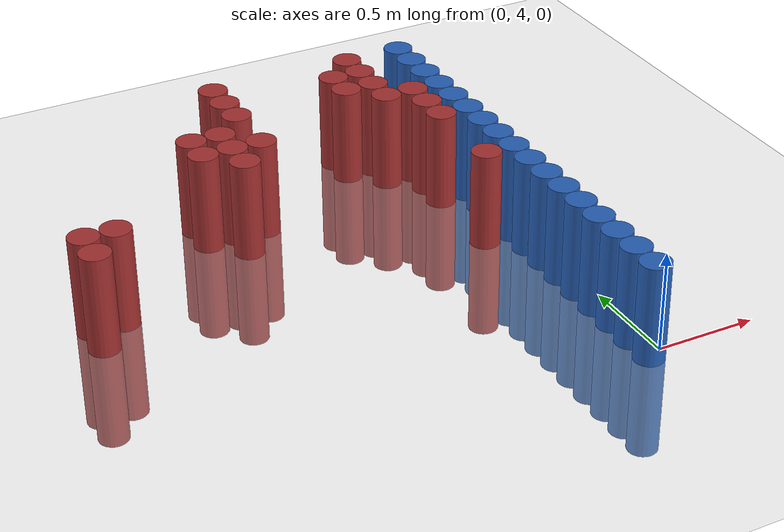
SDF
<sdf version="1.6">
 <world name="default">
  <model name="ground_plane">
   <static>1</static>
   <link name="link">
    <collision name="collision">
     <geometry><plane><normal>0 0 1</normal><size>100 100</size></plane></geometry>
     <surface><friction><ode><mu>100</mu><mu2>50</mu2></ode></friction></surface>
    </collision>
    <visual name="visual">
     <cast_shadows>0</cast_shadows>
     <geometry><plane><normal>0 0 1</normal><size>100 100</size></plane></geometry>
     <material>
      <script><uri>file://media/materials/scripts/gazebo.material</uri><name>Gazebo/Grey</name></script>
     </material>
    </visual>
   </link>
  </model>
  <model name="unit_cylinder_80">
   <static>1</static>
   <pose>-0.075000 3.975000 0.000000 0.000000 0.000000 0.000000</pose>
   <link name="link">
    <inertial>
     <mass>1</mass>
     <inertia><ixx>0.145833</ixx><ixy>0</ixy><ixz>0</ixz><iyy>0.145833</iyy><iyz>0</iyz><izz>0.125</izz></inertia>
    </inertial>
    <collision name="collision">
     <geometry><cylinder><radius>0.075000</radius><length>1</length></cylinder></geometry>
    </collision>
    <visual name="visual">
     <geometry><cylinder><radius>0.075000</radius><length>1</length></cylinder></geometry>
     <material>
      <ambient>0.152000 0.379000 0.720000 1</ambient>
      <diffuse>0.152000 0.379000 0.720000 1</diffuse>
     </material>
     <material>
      <script><name>Gazebo/Grey</name><uri>file://media/materials/scripts/gazebo.material</uri></script>
     </material>
    </visual>
    <sensor name="sensor_contact" type="contact"><contact><collision>collision</collision></contact></sensor>
   </link>
   <plugin filename="gz-sim-touchplugin-system" name="gz::sim::systems::TouchPlugin">
    <target>robot</target>
    <namespace>robot</namespace>
    <time>0.001</time>
    <enabled>true</enabled>
   </plugin>
  </model>
  <model name="unit_cylinder_82">
   <static>1</static>
   <pose>-0.075000 4.125000 0.000000 0.000000 0.000000 0.000000</pose>
   <link name="link">
    <inertial>
     <mass>1</mass>
     <inertia><ixx>0.145833</ixx><ixy>0</ixy><ixz>0</ixz><iyy>0.145833</iyy><iyz>0</iyz><izz>0.125</izz></inertia>
    </inertial>
    <collision name="collision">
     <geometry><cylinder><radius>0.075000</radius><length>1</length></cylinder></geometry>
    </collision>
    <visual name="visual">
     <geometry><cylinder><radius>0.075000</radius><length>1</length></cylinder></geometry>
     <material>
      <ambient>0.152000 0.379000 0.720000 1</ambient>
      <diffuse>0.152000 0.379000 0.720000 1</diffuse>
     </material>
     <material>
      <script><name>Gazebo/Grey</name><uri>file://media/materials/scripts/gazebo.material</uri></script>
     </material>
    </visual>
    <sensor name="sensor_contact" type="contact"><contact><collision>collision</collision></contact></sensor>
   </link>
   <plugin filename="gz-sim-touchplugin-system" name="gz::sim::systems::TouchPlugin">
    <target>robot</target>
    <namespace>robot</namespace>
    <time>0.001</time>
    <enabled>true</enabled>
   </plugin>
  </model>
  <model name="unit_cylinder_84">
   <static>1</static>
   <pose>-0.075000 4.275000 0.000000 0.000000 0.000000 0.000000</pose>
   <link name="link">
    <inertial>
     <mass>1</mass>
     <inertia><ixx>0.145833</ixx><ixy>0</ixy><ixz>0</ixz><iyy>0.145833</iyy><iyz>0</iyz><izz>0.125</izz></inertia>
    </inertial>
    <collision name="collision">
     <geometry><cylinder><radius>0.075000</radius><length>1</length></cylinder></geometry>
    </collision>
    <visual name="visual">
     <geometry><cylinder><radius>0.075000</radius><length>1</length></cylinder></geometry>
     <material>
      <ambient>0.152000 0.379000 0.720000 1</ambient>
      <diffuse>0.152000 0.379000 0.720000 1</diffuse>
     </material>
     <material>
      <script><name>Gazebo/Grey</name><uri>file://media/materials/scripts/gazebo.material</uri></script>
     </material>
    </visual>
    <sensor name="sensor_contact" type="contact"><contact><collision>collision</collision></contact></sensor>
   </link>
   <plugin filename="gz-sim-touchplugin-system" name="gz::sim::systems::TouchPlugin">
    <target>robot</target>
    <namespace>robot</namespace>
    <time>0.001</time>
    <enabled>true</enabled>
   </plugin>
  </model>
  <model name="unit_cylinder_86">
   <static>1</static>
   <pose>-0.075000 4.425000 0.000000 0.000000 0.000000 0.000000</pose>
   <link name="link">
    <inertial>
     <mass>1</mass>
     <inertia><ixx>0.145833</ixx><ixy>0</ixy><ixz>0</ixz><iyy>0.145833</iyy><iyz>0</iyz><izz>0.125</izz></inertia>
    </inertial>
    <collision name="collision">
     <geometry><cylinder><radius>0.075000</radius><length>1</length></cylinder></geometry>
    </collision>
    <visual name="visual">
     <geometry><cylinder><radius>0.075000</radius><length>1</length></cylinder></geometry>
     <material>
      <ambient>0.152000 0.379000 0.720000 1</ambient>
      <diffuse>0.152000 0.379000 0.720000 1</diffuse>
     </material>
     <material>
      <script><name>Gazebo/Grey</name><uri>file://media/materials/scripts/gazebo.material</uri></script>
     </material>
    </visual>
    <sensor name="sensor_contact" type="contact"><contact><collision>collision</collision></contact></sensor>
   </link>
   <plugin filename="gz-sim-touchplugin-system" name="gz::sim::systems::TouchPlugin">
    <target>robot</target>
    <namespace>robot</namespace>
    <time>0.001</time>
    <enabled>true</enabled>
   </plugin>
  </model>
  <model name="unit_cylinder_88">
   <static>1</static>
   <pose>-0.075000 4.575000 0.000000 0.000000 0.000000 0.000000</pose>
   <link name="link">
    <inertial>
     <mass>1</mass>
     <inertia><ixx>0.145833</ixx><ixy>0</ixy><ixz>0</ixz><iyy>0.145833</iyy><iyz>0</iyz><izz>0.125</izz></inertia>
    </inertial>
    <collision name="collision">
     <geometry><cylinder><radius>0.075000</radius><length>1</length></cylinder></geometry>
    </collision>
    <visual name="visual">
     <geometry><cylinder><radius>0.075000</radius><length>1</length></cylinder></geometry>
     <material>
      <ambient>0.152000 0.379000 0.720000 1</ambient>
      <diffuse>0.152000 0.379000 0.720000 1</diffuse>
     </material>
     <material>
      <script><name>Gazebo/Grey</name><uri>file://media/materials/scripts/gazebo.material</uri></script>
     </material>
    </visual>
    <sensor name="sensor_contact" type="contact"><contact><collision>collision</collision></contact></sensor>
   </link>
   <plugin filename="gz-sim-touchplugin-system" name="gz::sim::systems::TouchPlugin">
    <target>robot</target>
    <namespace>robot</namespace>
    <time>0.001</time>
    <enabled>true</enabled>
   </plugin>
  </model>
  <model name="unit_cylinder_90">
   <static>1</static>
   <pose>-0.075000 4.725000 0.000000 0.000000 0.000000 0.000000</pose>
   <link name="link">
    <inertial>
     <mass>1</mass>
     <inertia><ixx>0.145833</ixx><ixy>0</ixy><ixz>0</ixz><iyy>0.145833</iyy><iyz>0</iyz><izz>0.125</izz></inertia>
    </inertial>
    <collision name="collision">
     <geometry><cylinder><radius>0.075000</radius><length>1</length></cylinder></geometry>
    </collision>
    <visual name="visual">
     <geometry><cylinder><radius>0.075000</radius><length>1</length></cylinder></geometry>
     <material>
      <ambient>0.152000 0.379000 0.720000 1</ambient>
      <diffuse>0.152000 0.379000 0.720000 1</diffuse>
     </material>
     <material>
      <script><name>Gazebo/Grey</name><uri>file://media/materials/scripts/gazebo.material</uri></script>
     </material>
    </visual>
    <sensor name="sensor_contact" type="contact"><contact><collision>collision</collision></contact></sensor>
   </link>
   <plugin filename="gz-sim-touchplugin-system" name="gz::sim::systems::TouchPlugin">
    <target>robot</target>
    <namespace>robot</namespace>
    <time>0.001</time>
    <enabled>true</enabled>
   </plugin>
  </model>
  <model name="unit_cylinder_92">
   <static>1</static>
   <pose>-0.075000 4.875000 0.000000 0.000000 0.000000 0.000000</pose>
   <link name="link">
    <inertial>
     <mass>1</mass>
     <inertia><ixx>0.145833</ixx><ixy>0</ixy><ixz>0</ixz><iyy>0.145833</iyy><iyz>0</iyz><izz>0.125</izz></inertia>
    </inertial>
    <collision name="collision">
     <geometry><cylinder><radius>0.075000</radius><length>1</length></cylinder></geometry>
    </collision>
    <visual name="visual">
     <geometry><cylinder><radius>0.075000</radius><length>1</length></cylinder></geometry>
     <material>
      <ambient>0.152000 0.379000 0.720000 1</ambient>
      <diffuse>0.152000 0.379000 0.720000 1</diffuse>
     </material>
     <material>
      <script><name>Gazebo/Grey</name><uri>file://media/materials/scripts/gazebo.material</uri></script>
     </material>
    </visual>
    <sensor name="sensor_contact" type="contact"><contact><collision>collision</collision></contact></sensor>
   </link>
   <plugin filename="gz-sim-touchplugin-system" name="gz::sim::systems::TouchPlugin">
    <target>robot</target>
    <namespace>robot</namespace>
    <time>0.001</time>
    <enabled>true</enabled>
   </plugin>
  </model>
  <model name="unit_cylinder_94">
   <static>1</static>
   <pose>-0.075000 5.025000 0.000000 0.000000 0.000000 0.000000</pose>
   <link name="link">
    <inertial>
     <mass>1</mass>
     <inertia><ixx>0.145833</ixx><ixy>0</ixy><ixz>0</ixz><iyy>0.145833</iyy><iyz>0</iyz><izz>0.125</izz></inertia>
    </inertial>
    <collision name="collision">
     <geometry><cylinder><radius>0.075000</radius><length>1</length></cylinder></geometry>
    </collision>
    <visual name="visual">
     <geometry><cylinder><radius>0.075000</radius><length>1</length></cylinder></geometry>
     <material>
      <ambient>0.152000 0.379000 0.720000 1</ambient>
      <diffuse>0.152000 0.379000 0.720000 1</diffuse>
     </material>
     <material>
      <script><name>Gazebo/Grey</name><uri>file://media/materials/scripts/gazebo.material</uri></script>
     </material>
    </visual>
    <sensor name="sensor_contact" type="contact"><contact><collision>collision</collision></contact></sensor>
   </link>
   <plugin filename="gz-sim-touchplugin-system" name="gz::sim::systems::TouchPlugin">
    <target>robot</target>
    <namespace>robot</namespace>
    <time>0.001</time>
    <enabled>true</enabled>
   </plugin>
  </model>
  <model name="unit_cylinder_206">
   <static>1</static>
   <pose>-2.175000 5.175000 0.000000 0.000000 0.000000 0.000000</pose>
   <link name="link">
    <inertial>
     <mass>1</mass>
     <inertia><ixx>0.145833</ixx><ixy>0</ixy><ixz>0</ixz><iyy>0.145833</iyy><iyz>0</iyz><izz>0.125</izz></inertia>
    </inertial>
    <collision name="collision">
     <geometry><cylinder><radius>0.075000</radius><length>1</length></cylinder></geometry>
    </collision>
    <visual name="visual">
     <geometry><cylinder><radius>0.075000</radius><length>1</length></cylinder></geometry>
     <material>
      <ambient>0.648000 0.192000 0.192000 1</ambient>
      <diffuse>0.648000 0.192000 0.192000 1</diffuse>
     </material>
     <material>
      <script><name>Gazebo/Grey</name><uri>file://media/materials/scripts/gazebo.material</uri></script>
     </material>
    </visual>
    <sensor name="sensor_contact" type="contact"><contact><collision>collision</collision></contact></sensor>
   </link>
   <plugin filename="gz-sim-touchplugin-system" name="gz::sim::systems::TouchPlugin">
    <target>robot</target>
    <namespace>robot</namespace>
    <time>0.001</time>
    <enabled>true</enabled>
   </plugin>
  </model>
  <model name="unit_cylinder_207">
   <static>1</static>
   <pose>-2.175000 5.325000 0.000000 0.000000 0.000000 0.000000</pose>
   <link name="link">
    <inertial>
     <mass>1</mass>
     <inertia><ixx>0.145833</ixx><ixy>0</ixy><ixz>0</ixz><iyy>0.145833</iyy><iyz>0</iyz><izz>0.125</izz></inertia>
    </inertial>
    <collision name="collision">
     <geometry><cylinder><radius>0.075000</radius><length>1</length></cylinder></geometry>
    </collision>
    <visual name="visual">
     <geometry><cylinder><radius>0.075000</radius><length>1</length></cylinder></geometry>
     <material>
      <ambient>0.648000 0.192000 0.192000 1</ambient>
      <diffuse>0.648000 0.192000 0.192000 1</diffuse>
     </material>
     <material>
      <script><name>Gazebo/Grey</name><uri>file://media/materials/scripts/gazebo.material</uri></script>
     </material>
    </visual>
    <sensor name="sensor_contact" type="contact"><contact><collision>collision</collision></contact></sensor>
   </link>
   <plugin filename="gz-sim-touchplugin-system" name="gz::sim::systems::TouchPlugin">
    <target>robot</target>
    <namespace>robot</namespace>
    <time>0.001</time>
    <enabled>true</enabled>
   </plugin>
  </model>
  <model name="unit_cylinder_219">
   <static>1</static>
   <pose>-2.025000 5.325000 0.000000 0.000000 0.000000 0.000000</pose>
   <link name="link">
    <inertial>
     <mass>1</mass>
     <inertia><ixx>0.145833</ixx><ixy>0</ixy><ixz>0</ixz><iyy>0.145833</iyy><iyz>0</iyz><izz>0.125</izz></inertia>
    </inertial>
    <collision name="collision">
     <geometry><cylinder><radius>0.075000</radius><length>1</length></cylinder></geometry>
    </collision>
    <visual name="visual">
     <geometry><cylinder><radius>0.075000</radius><length>1</length></cylinder></geometry>
     <material>
      <ambient>0.648000 0.192000 0.192000 1</ambient>
      <diffuse>0.648000 0.192000 0.192000 1</diffuse>
     </material>
     <material>
      <script><name>Gazebo/Grey</name><uri>file://media/materials/scripts/gazebo.material</uri></script>
     </material>
    </visual>
    <sensor name="sensor_contact" type="contact"><contact><collision>collision</collision></contact></sensor>
   </link>
   <plugin filename="gz-sim-touchplugin-system" name="gz::sim::systems::TouchPlugin">
    <target>robot</target>
    <namespace>robot</namespace>
    <time>0.001</time>
    <enabled>true</enabled>
   </plugin>
  </model>
  <model name="unit_cylinder_225">
   <static>1</static>
   <pose>-1.425000 5.775000 0.000000 0.000000 0.000000 0.000000</pose>
   <link name="link">
    <inertial>
     <mass>1</mass>
     <inertia><ixx>0.145833</ixx><ixy>0</ixy><ixz>0</ixz><iyy>0.145833</iyy><iyz>0</iyz><izz>0.125</izz></inertia>
    </inertial>
    <collision name="collision">
     <geometry><cylinder><radius>0.075000</radius><length>1</length></cylinder></geometry>
    </collision>
    <visual name="visual">
     <geometry><cylinder><radius>0.075000</radius><length>1</length></cylinder></geometry>
     <material>
      <ambient>0.648000 0.192000 0.192000 1</ambient>
      <diffuse>0.648000 0.192000 0.192000 1</diffuse>
     </material>
     <material>
      <script><name>Gazebo/Grey</name><uri>file://media/materials/scripts/gazebo.material</uri></script>
     </material>
    </visual>
    <sensor name="sensor_contact" type="contact"><contact><collision>collision</collision></contact></sensor>
   </link>
   <plugin filename="gz-sim-touchplugin-system" name="gz::sim::systems::TouchPlugin">
    <target>robot</target>
    <namespace>robot</namespace>
    <time>0.001</time>
    <enabled>true</enabled>
   </plugin>
  </model>
  <model name="unit_cylinder_226">
   <static>1</static>
   <pose>-1.425000 5.925000 0.000000 0.000000 0.000000 0.000000</pose>
   <link name="link">
    <inertial>
     <mass>1</mass>
     <inertia><ixx>0.145833</ixx><ixy>0</ixy><ixz>0</ixz><iyy>0.145833</iyy><iyz>0</iyz><izz>0.125</izz></inertia>
    </inertial>
    <collision name="collision">
     <geometry><cylinder><radius>0.075000</radius><length>1</length></cylinder></geometry>
    </collision>
    <visual name="visual">
     <geometry><cylinder><radius>0.075000</radius><length>1</length></cylinder></geometry>
     <material>
      <ambient>0.648000 0.192000 0.192000 1</ambient>
      <diffuse>0.648000 0.192000 0.192000 1</diffuse>
     </material>
     <material>
      <script><name>Gazebo/Grey</name><uri>file://media/materials/scripts/gazebo.material</uri></script>
     </material>
    </visual>
    <sensor name="sensor_contact" type="contact"><contact><collision>collision</collision></contact></sensor>
   </link>
   <plugin filename="gz-sim-touchplugin-system" name="gz::sim::systems::TouchPlugin">
    <target>robot</target>
    <namespace>robot</namespace>
    <time>0.001</time>
    <enabled>true</enabled>
   </plugin>
  </model>
  <model name="unit_cylinder_229">
   <static>1</static>
   <pose>-1.275000 5.625000 0.000000 0.000000 0.000000 0.000000</pose>
   <link name="link">
    <inertial>
     <mass>1</mass>
     <inertia><ixx>0.145833</ixx><ixy>0</ixy><ixz>0</ixz><iyy>0.145833</iyy><iyz>0</iyz><izz>0.125</izz></inertia>
    </inertial>
    <collision name="collision">
     <geometry><cylinder><radius>0.075000</radius><length>1</length></cylinder></geometry>
    </collision>
    <visual name="visual">
     <geometry><cylinder><radius>0.075000</radius><length>1</length></cylinder></geometry>
     <material>
      <ambient>0.648000 0.192000 0.192000 1</ambient>
      <diffuse>0.648000 0.192000 0.192000 1</diffuse>
     </material>
     <material>
      <script><name>Gazebo/Grey</name><uri>file://media/materials/scripts/gazebo.material</uri></script>
     </material>
    </visual>
    <sensor name="sensor_contact" type="contact"><contact><collision>collision</collision></contact></sensor>
   </link>
   <plugin filename="gz-sim-touchplugin-system" name="gz::sim::systems::TouchPlugin">
    <target>robot</target>
    <namespace>robot</namespace>
    <time>0.001</time>
    <enabled>true</enabled>
   </plugin>
  </model>
  <model name="unit_cylinder_230">
   <static>1</static>
   <pose>-1.275000 5.775000 0.000000 0.000000 0.000000 0.000000</pose>
   <link name="link">
    <inertial>
     <mass>1</mass>
     <inertia><ixx>0.145833</ixx><ixy>0</ixy><ixz>0</ixz><iyy>0.145833</iyy><iyz>0</iyz><izz>0.125</izz></inertia>
    </inertial>
    <collision name="collision">
     <geometry><cylinder><radius>0.075000</radius><length>1</length></cylinder></geometry>
    </collision>
    <visual name="visual">
     <geometry><cylinder><radius>0.075000</radius><length>1</length></cylinder></geometry>
     <material>
      <ambient>0.648000 0.192000 0.192000 1</ambient>
      <diffuse>0.648000 0.192000 0.192000 1</diffuse>
     </material>
     <material>
      <script><name>Gazebo/Grey</name><uri>file://media/materials/scripts/gazebo.material</uri></script>
     </material>
    </visual>
    <sensor name="sensor_contact" type="contact"><contact><collision>collision</collision></contact></sensor>
   </link>
   <plugin filename="gz-sim-touchplugin-system" name="gz::sim::systems::TouchPlugin">
    <target>robot</target>
    <namespace>robot</namespace>
    <time>0.001</time>
    <enabled>true</enabled>
   </plugin>
  </model>
  <model name="unit_cylinder_231">
   <static>1</static>
   <pose>-1.275000 5.925000 0.000000 0.000000 0.000000 0.000000</pose>
   <link name="link">
    <inertial>
     <mass>1</mass>
     <inertia><ixx>0.145833</ixx><ixy>0</ixy><ixz>0</ixz><iyy>0.145833</iyy><iyz>0</iyz><izz>0.125</izz></inertia>
    </inertial>
    <collision name="collision">
     <geometry><cylinder><radius>0.075000</radius><length>1</length></cylinder></geometry>
    </collision>
    <visual name="visual">
     <geometry><cylinder><radius>0.075000</radius><length>1</length></cylinder></geometry>
     <material>
      <ambient>0.648000 0.192000 0.192000 1</ambient>
      <diffuse>0.648000 0.192000 0.192000 1</diffuse>
     </material>
     <material>
      <script><name>Gazebo/Grey</name><uri>file://media/materials/scripts/gazebo.material</uri></script>
     </material>
    </visual>
    <sensor name="sensor_contact" type="contact"><contact><collision>collision</collision></contact></sensor>
   </link>
   <plugin filename="gz-sim-touchplugin-system" name="gz::sim::systems::TouchPlugin">
    <target>robot</target>
    <namespace>robot</namespace>
    <time>0.001</time>
    <enabled>true</enabled>
   </plugin>
  </model>
  <model name="unit_cylinder_238">
   <static>1</static>
   <pose>-1.125000 5.775000 0.000000 0.000000 0.000000 0.000000</pose>
   <link name="link">
    <inertial>
     <mass>1</mass>
     <inertia><ixx>0.145833</ixx><ixy>0</ixy><ixz>0</ixz><iyy>0.145833</iyy><iyz>0</iyz><izz>0.125</izz></inertia>
    </inertial>
    <collision name="collision">
     <geometry><cylinder><radius>0.075000</radius><length>1</length></cylinder></geometry>
    </collision>
    <visual name="visual">
     <geometry><cylinder><radius>0.075000</radius><length>1</length></cylinder></geometry>
     <material>
      <ambient>0.648000 0.192000 0.192000 1</ambient>
      <diffuse>0.648000 0.192000 0.192000 1</diffuse>
     </material>
     <material>
      <script><name>Gazebo/Grey</name><uri>file://media/materials/scripts/gazebo.material</uri></script>
     </material>
    </visual>
    <sensor name="sensor_contact" type="contact"><contact><collision>collision</collision></contact></sensor>
   </link>
   <plugin filename="gz-sim-touchplugin-system" name="gz::sim::systems::TouchPlugin">
    <target>robot</target>
    <namespace>robot</namespace>
    <time>0.001</time>
    <enabled>true</enabled>
   </plugin>
  </model>
  <model name="unit_cylinder_239">
   <static>1</static>
   <pose>-1.125000 6.075000 0.000000 0.000000 0.000000 0.000000</pose>
   <link name="link">
    <inertial>
     <mass>1</mass>
     <inertia><ixx>0.145833</ixx><ixy>0</ixy><ixz>0</ixz><iyy>0.145833</iyy><iyz>0</iyz><izz>0.125</izz></inertia>
    </inertial>
    <collision name="collision">
     <geometry><cylinder><radius>0.075000</radius><length>1</length></cylinder></geometry>
    </collision>
    <visual name="visual">
     <geometry><cylinder><radius>0.075000</radius><length>1</length></cylinder></geometry>
     <material>
      <ambient>0.648000 0.192000 0.192000 1</ambient>
      <diffuse>0.648000 0.192000 0.192000 1</diffuse>
     </material>
     <material>
      <script><name>Gazebo/Grey</name><uri>file://media/materials/scripts/gazebo.material</uri></script>
     </material>
    </visual>
    <sensor name="sensor_contact" type="contact"><contact><collision>collision</collision></contact></sensor>
   </link>
   <plugin filename="gz-sim-touchplugin-system" name="gz::sim::systems::TouchPlugin">
    <target>robot</target>
    <namespace>robot</namespace>
    <time>0.001</time>
    <enabled>true</enabled>
   </plugin>
  </model>
  <model name="unit_cylinder_240">
   <static>1</static>
   <pose>-1.125000 6.225000 0.000000 0.000000 0.000000 0.000000</pose>
   <link name="link">
    <inertial>
     <mass>1</mass>
     <inertia><ixx>0.145833</ixx><ixy>0</ixy><ixz>0</ixz><iyy>0.145833</iyy><iyz>0</iyz><izz>0.125</izz></inertia>
    </inertial>
    <collision name="collision">
     <geometry><cylinder><radius>0.075000</radius><length>1</length></cylinder></geometry>
    </collision>
    <visual name="visual">
     <geometry><cylinder><radius>0.075000</radius><length>1</length></cylinder></geometry>
     <material>
      <ambient>0.648000 0.192000 0.192000 1</ambient>
      <diffuse>0.648000 0.192000 0.192000 1</diffuse>
     </material>
     <material>
      <script><name>Gazebo/Grey</name><uri>file://media/materials/scripts/gazebo.material</uri></script>
     </material>
    </visual>
    <sensor name="sensor_contact" type="contact"><contact><collision>collision</collision></contact></sensor>
   </link>
   <plugin filename="gz-sim-touchplugin-system" name="gz::sim::systems::TouchPlugin">
    <target>robot</target>
    <namespace>robot</namespace>
    <time>0.001</time>
    <enabled>true</enabled>
   </plugin>
  </model>
  <model name="unit_cylinder_241">
   <static>1</static>
   <pose>-1.125000 6.375000 0.000000 0.000000 0.000000 0.000000</pose>
   <link name="link">
    <inertial>
     <mass>1</mass>
     <inertia><ixx>0.145833</ixx><ixy>0</ixy><ixz>0</ixz><iyy>0.145833</iyy><iyz>0</iyz><izz>0.125</izz></inertia>
    </inertial>
    <collision name="collision">
     <geometry><cylinder><radius>0.075000</radius><length>1</length></cylinder></geometry>
    </collision>
    <visual name="visual">
     <geometry><cylinder><radius>0.075000</radius><length>1</length></cylinder></geometry>
     <material>
      <ambient>0.648000 0.192000 0.192000 1</ambient>
      <diffuse>0.648000 0.192000 0.192000 1</diffuse>
     </material>
     <material>
      <script><name>Gazebo/Grey</name><uri>file://media/materials/scripts/gazebo.material</uri></script>
     </material>
    </visual>
    <sensor name="sensor_contact" type="contact"><contact><collision>collision</collision></contact></sensor>
   </link>
   <plugin filename="gz-sim-touchplugin-system" name="gz::sim::systems::TouchPlugin">
    <target>robot</target>
    <namespace>robot</namespace>
    <time>0.001</time>
    <enabled>true</enabled>
   </plugin>
  </model>
  <model name="unit_cylinder_259">
   <static>1</static>
   <pose>-0.525000 6.075000 0.000000 0.000000 0.000000 0.000000</pose>
   <link name="link">
    <inertial>
     <mass>1</mass>
     <inertia><ixx>0.145833</ixx><ixy>0</ixy><ixz>0</ixz><iyy>0.145833</iyy><iyz>0</iyz><izz>0.125</izz></inertia>
    </inertial>
    <collision name="collision">
     <geometry><cylinder><radius>0.075000</radius><length>1</length></cylinder></geometry>
    </collision>
    <visual name="visual">
     <geometry><cylinder><radius>0.075000</radius><length>1</length></cylinder></geometry>
     <material>
      <ambient>0.648000 0.192000 0.192000 1</ambient>
      <diffuse>0.648000 0.192000 0.192000 1</diffuse>
     </material>
     <material>
      <script><name>Gazebo/Grey</name><uri>file://media/materials/scripts/gazebo.material</uri></script>
     </material>
    </visual>
    <sensor name="sensor_contact" type="contact"><contact><collision>collision</collision></contact></sensor>
   </link>
   <plugin filename="gz-sim-touchplugin-system" name="gz::sim::systems::TouchPlugin">
    <target>robot</target>
    <namespace>robot</namespace>
    <time>0.001</time>
    <enabled>true</enabled>
   </plugin>
  </model>
  <model name="unit_cylinder_260">
   <static>1</static>
   <pose>-0.525000 6.225000 0.000000 0.000000 0.000000 0.000000</pose>
   <link name="link">
    <inertial>
     <mass>1</mass>
     <inertia><ixx>0.145833</ixx><ixy>0</ixy><ixz>0</ixz><iyy>0.145833</iyy><iyz>0</iyz><izz>0.125</izz></inertia>
    </inertial>
    <collision name="collision">
     <geometry><cylinder><radius>0.075000</radius><length>1</length></cylinder></geometry>
    </collision>
    <visual name="visual">
     <geometry><cylinder><radius>0.075000</radius><length>1</length></cylinder></geometry>
     <material>
      <ambient>0.648000 0.192000 0.192000 1</ambient>
      <diffuse>0.648000 0.192000 0.192000 1</diffuse>
     </material>
     <material>
      <script><name>Gazebo/Grey</name><uri>file://media/materials/scripts/gazebo.material</uri></script>
     </material>
    </visual>
    <sensor name="sensor_contact" type="contact"><contact><collision>collision</collision></contact></sensor>
   </link>
   <plugin filename="gz-sim-touchplugin-system" name="gz::sim::systems::TouchPlugin">
    <target>robot</target>
    <namespace>robot</namespace>
    <time>0.001</time>
    <enabled>true</enabled>
   </plugin>
  </model>
  <model name="unit_cylinder_266">
   <static>1</static>
   <pose>-0.375000 5.925000 0.000000 0.000000 0.000000 0.000000</pose>
   <link name="link">
    <inertial>
     <mass>1</mass>
     <inertia><ixx>0.145833</ixx><ixy>0</ixy><ixz>0</ixz><iyy>0.145833</iyy><iyz>0</iyz><izz>0.125</izz></inertia>
    </inertial>
    <collision name="collision">
     <geometry><cylinder><radius>0.075000</radius><length>1</length></cylinder></geometry>
    </collision>
    <visual name="visual">
     <geometry><cylinder><radius>0.075000</radius><length>1</length></cylinder></geometry>
     <material>
      <ambient>0.648000 0.192000 0.192000 1</ambient>
      <diffuse>0.648000 0.192000 0.192000 1</diffuse>
     </material>
     <material>
      <script><name>Gazebo/Grey</name><uri>file://media/materials/scripts/gazebo.material</uri></script>
     </material>
    </visual>
    <sensor name="sensor_contact" type="contact"><contact><collision>collision</collision></contact></sensor>
   </link>
   <plugin filename="gz-sim-touchplugin-system" name="gz::sim::systems::TouchPlugin">
    <target>robot</target>
    <namespace>robot</namespace>
    <time>0.001</time>
    <enabled>true</enabled>
   </plugin>
  </model>
  <model name="unit_cylinder_267">
   <static>1</static>
   <pose>-0.375000 6.075000 0.000000 0.000000 0.000000 0.000000</pose>
   <link name="link">
    <inertial>
     <mass>1</mass>
     <inertia><ixx>0.145833</ixx><ixy>0</ixy><ixz>0</ixz><iyy>0.145833</iyy><iyz>0</iyz><izz>0.125</izz></inertia>
    </inertial>
    <collision name="collision">
     <geometry><cylinder><radius>0.075000</radius><length>1</length></cylinder></geometry>
    </collision>
    <visual name="visual">
     <geometry><cylinder><radius>0.075000</radius><length>1</length></cylinder></geometry>
     <material>
      <ambient>0.648000 0.192000 0.192000 1</ambient>
      <diffuse>0.648000 0.192000 0.192000 1</diffuse>
     </material>
     <material>
      <script><name>Gazebo/Grey</name><uri>file://media/materials/scripts/gazebo.material</uri></script>
     </material>
    </visual>
    <sensor name="sensor_contact" type="contact"><contact><collision>collision</collision></contact></sensor>
   </link>
   <plugin filename="gz-sim-touchplugin-system" name="gz::sim::systems::TouchPlugin">
    <target>robot</target>
    <namespace>robot</namespace>
    <time>0.001</time>
    <enabled>true</enabled>
   </plugin>
  </model>
  <model name="unit_cylinder_268">
   <static>1</static>
   <pose>-0.375000 6.225000 0.000000 0.000000 0.000000 0.000000</pose>
   <link name="link">
    <inertial>
     <mass>1</mass>
     <inertia><ixx>0.145833</ixx><ixy>0</ixy><ixz>0</ixz><iyy>0.145833</iyy><iyz>0</iyz><izz>0.125</izz></inertia>
    </inertial>
    <collision name="collision">
     <geometry><cylinder><radius>0.075000</radius><length>1</length></cylinder></geometry>
    </collision>
    <visual name="visual">
     <geometry><cylinder><radius>0.075000</radius><length>1</length></cylinder></geometry>
     <material>
      <ambient>0.648000 0.192000 0.192000 1</ambient>
      <diffuse>0.648000 0.192000 0.192000 1</diffuse>
     </material>
     <material>
      <script><name>Gazebo/Grey</name><uri>file://media/materials/scripts/gazebo.material</uri></script>
     </material>
    </visual>
    <sensor name="sensor_contact" type="contact"><contact><collision>collision</collision></contact></sensor>
   </link>
   <plugin filename="gz-sim-touchplugin-system" name="gz::sim::systems::TouchPlugin">
    <target>robot</target>
    <namespace>robot</namespace>
    <time>0.001</time>
    <enabled>true</enabled>
   </plugin>
  </model>
  <model name="unit_cylinder_269">
   <static>1</static>
   <pose>-0.375000 6.375000 0.000000 0.000000 0.000000 0.000000</pose>
   <link name="link">
    <inertial>
     <mass>1</mass>
     <inertia><ixx>0.145833</ixx><ixy>0</ixy><ixz>0</ixz><iyy>0.145833</iyy><iyz>0</iyz><izz>0.125</izz></inertia>
    </inertial>
    <collision name="collision">
     <geometry><cylinder><radius>0.075000</radius><length>1</length></cylinder></geometry>
    </collision>
    <visual name="visual">
     <geometry><cylinder><radius>0.075000</radius><length>1</length></cylinder></geometry>
     <material>
      <ambient>0.648000 0.192000 0.192000 1</ambient>
      <diffuse>0.648000 0.192000 0.192000 1</diffuse>
     </material>
     <material>
      <script><name>Gazebo/Grey</name><uri>file://media/materials/scripts/gazebo.material</uri></script>
     </material>
    </visual>
    <sensor name="sensor_contact" type="contact"><contact><collision>collision</collision></contact></sensor>
   </link>
   <plugin filename="gz-sim-touchplugin-system" name="gz::sim::systems::TouchPlugin">
    <target>robot</target>
    <namespace>robot</namespace>
    <time>0.001</time>
    <enabled>true</enabled>
   </plugin>
  </model>
  <model name="unit_cylinder_274">
   <static>1</static>
   <pose>-0.225000 5.175000 0.000000 0.000000 0.000000 0.000000</pose>
   <link name="link">
    <inertial>
     <mass>1</mass>
     <inertia><ixx>0.145833</ixx><ixy>0</ixy><ixz>0</ixz><iyy>0.145833</iyy><iyz>0</iyz><izz>0.125</izz></inertia>
    </inertial>
    <collision name="collision">
     <geometry><cylinder><radius>0.075000</radius><length>1</length></cylinder></geometry>
    </collision>
    <visual name="visual">
     <geometry><cylinder><radius>0.075000</radius><length>1</length></cylinder></geometry>
     <material>
      <ambient>0.648000 0.192000 0.192000 1</ambient>
      <diffuse>0.648000 0.192000 0.192000 1</diffuse>
     </material>
     <material>
      <script><name>Gazebo/Grey</name><uri>file://media/materials/scripts/gazebo.material</uri></script>
     </material>
    </visual>
    <sensor name="sensor_contact" type="contact"><contact><collision>collision</collision></contact></sensor>
   </link>
   <plugin filename="gz-sim-touchplugin-system" name="gz::sim::systems::TouchPlugin">
    <target>robot</target>
    <namespace>robot</namespace>
    <time>0.001</time>
    <enabled>true</enabled>
   </plugin>
  </model>
  <model name="unit_cylinder_275">
   <static>1</static>
   <pose>-0.225000 5.625000 0.000000 0.000000 0.000000 0.000000</pose>
   <link name="link">
    <inertial>
     <mass>1</mass>
     <inertia><ixx>0.145833</ixx><ixy>0</ixy><ixz>0</ixz><iyy>0.145833</iyy><iyz>0</iyz><izz>0.125</izz></inertia>
    </inertial>
    <collision name="collision">
     <geometry><cylinder><radius>0.075000</radius><length>1</length></cylinder></geometry>
    </collision>
    <visual name="visual">
     <geometry><cylinder><radius>0.075000</radius><length>1</length></cylinder></geometry>
     <material>
      <ambient>0.648000 0.192000 0.192000 1</ambient>
      <diffuse>0.648000 0.192000 0.192000 1</diffuse>
     </material>
     <material>
      <script><name>Gazebo/Grey</name><uri>file://media/materials/scripts/gazebo.material</uri></script>
     </material>
    </visual>
    <sensor name="sensor_contact" type="contact"><contact><collision>collision</collision></contact></sensor>
   </link>
   <plugin filename="gz-sim-touchplugin-system" name="gz::sim::systems::TouchPlugin">
    <target>robot</target>
    <namespace>robot</namespace>
    <time>0.001</time>
    <enabled>true</enabled>
   </plugin>
  </model>
  <model name="unit_cylinder_276">
   <static>1</static>
   <pose>-0.225000 5.775000 0.000000 0.000000 0.000000 0.000000</pose>
   <link name="link">
    <inertial>
     <mass>1</mass>
     <inertia><ixx>0.145833</ixx><ixy>0</ixy><ixz>0</ixz><iyy>0.145833</iyy><iyz>0</iyz><izz>0.125</izz></inertia>
    </inertial>
    <collision name="collision">
     <geometry><cylinder><radius>0.075000</radius><length>1</length></cylinder></geometry>
    </collision>
    <visual name="visual">
     <geometry><cylinder><radius>0.075000</radius><length>1</length></cylinder></geometry>
     <material>
      <ambient>0.648000 0.192000 0.192000 1</ambient>
      <diffuse>0.648000 0.192000 0.192000 1</diffuse>
     </material>
     <material>
      <script><name>Gazebo/Grey</name><uri>file://media/materials/scripts/gazebo.material</uri></script>
     </material>
    </visual>
    <sensor name="sensor_contact" type="contact"><contact><collision>collision</collision></contact></sensor>
   </link>
   <plugin filename="gz-sim-touchplugin-system" name="gz::sim::systems::TouchPlugin">
    <target>robot</target>
    <namespace>robot</namespace>
    <time>0.001</time>
    <enabled>true</enabled>
   </plugin>
  </model>
  <model name="unit_cylinder_277">
   <static>1</static>
   <pose>-0.225000 5.925000 0.000000 0.000000 0.000000 0.000000</pose>
   <link name="link">
    <inertial>
     <mass>1</mass>
     <inertia><ixx>0.145833</ixx><ixy>0</ixy><ixz>0</ixz><iyy>0.145833</iyy><iyz>0</iyz><izz>0.125</izz></inertia>
    </inertial>
    <collision name="collision">
     <geometry><cylinder><radius>0.075000</radius><length>1</length></cylinder></geometry>
    </collision>
    <visual name="visual">
     <geometry><cylinder><radius>0.075000</radius><length>1</length></cylinder></geometry>
     <material>
      <ambient>0.648000 0.192000 0.192000 1</ambient>
      <diffuse>0.648000 0.192000 0.192000 1</diffuse>
     </material>
     <material>
      <script><name>Gazebo/Grey</name><uri>file://media/materials/scripts/gazebo.material</uri></script>
     </material>
    </visual>
    <sensor name="sensor_contact" type="contact"><contact><collision>collision</collision></contact></sensor>
   </link>
   <plugin filename="gz-sim-touchplugin-system" name="gz::sim::systems::TouchPlugin">
    <target>robot</target>
    <namespace>robot</namespace>
    <time>0.001</time>
    <enabled>true</enabled>
   </plugin>
  </model>
  <model name="unit_cylinder_287">
   <static>1</static>
   <pose>-0.075000 5.175000 0.000000 0.000000 0.000000 0.000000</pose>
   <link name="link">
    <inertial>
     <mass>1</mass>
     <inertia><ixx>0.145833</ixx><ixy>0</ixy><ixz>0</ixz><iyy>0.145833</iyy><iyz>0</iyz><izz>0.125</izz></inertia>
    </inertial>
    <collision name="collision">
     <geometry><cylinder><radius>0.075000</radius><length>1</length></cylinder></geometry>
    </collision>
    <visual name="visual">
     <geometry><cylinder><radius>0.075000</radius><length>1</length></cylinder></geometry>
     <material>
      <ambient>0.152000 0.379000 0.720000 1</ambient>
      <diffuse>0.152000 0.379000 0.720000 1</diffuse>
     </material>
     <material>
      <script><name>Gazebo/Grey</name><uri>file://media/materials/scripts/gazebo.material</uri></script>
     </material>
    </visual>
    <sensor name="sensor_contact" type="contact"><contact><collision>collision</collision></contact></sensor>
   </link>
   <plugin filename="gz-sim-touchplugin-system" name="gz::sim::systems::TouchPlugin">
    <target>robot</target>
    <namespace>robot</namespace>
    <time>0.001</time>
    <enabled>true</enabled>
   </plugin>
  </model>
  <model name="unit_cylinder_288">
   <static>1</static>
   <pose>-0.075000 5.325000 0.000000 0.000000 0.000000 0.000000</pose>
   <link name="link">
    <inertial>
     <mass>1</mass>
     <inertia><ixx>0.145833</ixx><ixy>0</ixy><ixz>0</ixz><iyy>0.145833</iyy><iyz>0</iyz><izz>0.125</izz></inertia>
    </inertial>
    <collision name="collision">
     <geometry><cylinder><radius>0.075000</radius><length>1</length></cylinder></geometry>
    </collision>
    <visual name="visual">
     <geometry><cylinder><radius>0.075000</radius><length>1</length></cylinder></geometry>
     <material>
      <ambient>0.152000 0.379000 0.720000 1</ambient>
      <diffuse>0.152000 0.379000 0.720000 1</diffuse>
     </material>
     <material>
      <script><name>Gazebo/Grey</name><uri>file://media/materials/scripts/gazebo.material</uri></script>
     </material>
    </visual>
    <sensor name="sensor_contact" type="contact"><contact><collision>collision</collision></contact></sensor>
   </link>
   <plugin filename="gz-sim-touchplugin-system" name="gz::sim::systems::TouchPlugin">
    <target>robot</target>
    <namespace>robot</namespace>
    <time>0.001</time>
    <enabled>true</enabled>
   </plugin>
  </model>
  <model name="unit_cylinder_289">
   <static>1</static>
   <pose>-0.075000 5.475000 0.000000 0.000000 0.000000 0.000000</pose>
   <link name="link">
    <inertial>
     <mass>1</mass>
     <inertia><ixx>0.145833</ixx><ixy>0</ixy><ixz>0</ixz><iyy>0.145833</iyy><iyz>0</iyz><izz>0.125</izz></inertia>
    </inertial>
    <collision name="collision">
     <geometry><cylinder><radius>0.075000</radius><length>1</length></cylinder></geometry>
    </collision>
    <visual name="visual">
     <geometry><cylinder><radius>0.075000</radius><length>1</length></cylinder></geometry>
     <material>
      <ambient>0.152000 0.379000 0.720000 1</ambient>
      <diffuse>0.152000 0.379000 0.720000 1</diffuse>
     </material>
     <material>
      <script><name>Gazebo/Grey</name><uri>file://media/materials/scripts/gazebo.material</uri></script>
     </material>
    </visual>
    <sensor name="sensor_contact" type="contact"><contact><collision>collision</collision></contact></sensor>
   </link>
   <plugin filename="gz-sim-touchplugin-system" name="gz::sim::systems::TouchPlugin">
    <target>robot</target>
    <namespace>robot</namespace>
    <time>0.001</time>
    <enabled>true</enabled>
   </plugin>
  </model>
  <model name="unit_cylinder_290">
   <static>1</static>
   <pose>-0.075000 5.625000 0.000000 0.000000 0.000000 0.000000</pose>
   <link name="link">
    <inertial>
     <mass>1</mass>
     <inertia><ixx>0.145833</ixx><ixy>0</ixy><ixz>0</ixz><iyy>0.145833</iyy><iyz>0</iyz><izz>0.125</izz></inertia>
    </inertial>
    <collision name="collision">
     <geometry><cylinder><radius>0.075000</radius><length>1</length></cylinder></geometry>
    </collision>
    <visual name="visual">
     <geometry><cylinder><radius>0.075000</radius><length>1</length></cylinder></geometry>
     <material>
      <ambient>0.152000 0.379000 0.720000 1</ambient>
      <diffuse>0.152000 0.379000 0.720000 1</diffuse>
     </material>
     <material>
      <script><name>Gazebo/Grey</name><uri>file://media/materials/scripts/gazebo.material</uri></script>
     </material>
    </visual>
    <sensor name="sensor_contact" type="contact"><contact><collision>collision</collision></contact></sensor>
   </link>
   <plugin filename="gz-sim-touchplugin-system" name="gz::sim::systems::TouchPlugin">
    <target>robot</target>
    <namespace>robot</namespace>
    <time>0.001</time>
    <enabled>true</enabled>
   </plugin>
  </model>
  <model name="unit_cylinder_291">
   <static>1</static>
   <pose>-0.075000 5.775000 0.000000 0.000000 0.000000 0.000000</pose>
   <link name="link">
    <inertial>
     <mass>1</mass>
     <inertia><ixx>0.145833</ixx><ixy>0</ixy><ixz>0</ixz><iyy>0.145833</iyy><iyz>0</iyz><izz>0.125</izz></inertia>
    </inertial>
    <collision name="collision">
     <geometry><cylinder><radius>0.075000</radius><length>1</length></cylinder></geometry>
    </collision>
    <visual name="visual">
     <geometry><cylinder><radius>0.075000</radius><length>1</length></cylinder></geometry>
     <material>
      <ambient>0.152000 0.379000 0.720000 1</ambient>
      <diffuse>0.152000 0.379000 0.720000 1</diffuse>
     </material>
     <material>
      <script><name>Gazebo/Grey</name><uri>file://media/materials/scripts/gazebo.material</uri></script>
     </material>
    </visual>
    <sensor name="sensor_contact" type="contact"><contact><collision>collision</collision></contact></sensor>
   </link>
   <plugin filename="gz-sim-touchplugin-system" name="gz::sim::systems::TouchPlugin">
    <target>robot</target>
    <namespace>robot</namespace>
    <time>0.001</time>
    <enabled>true</enabled>
   </plugin>
  </model>
  <model name="unit_cylinder_292">
   <static>1</static>
   <pose>-0.075000 5.925000 0.000000 0.000000 0.000000 0.000000</pose>
   <link name="link">
    <inertial>
     <mass>1</mass>
     <inertia><ixx>0.145833</ixx><ixy>0</ixy><ixz>0</ixz><iyy>0.145833</iyy><iyz>0</iyz><izz>0.125</izz></inertia>
    </inertial>
    <collision name="collision">
     <geometry><cylinder><radius>0.075000</radius><length>1</length></cylinder></geometry>
    </collision>
    <visual name="visual">
     <geometry><cylinder><radius>0.075000</radius><length>1</length></cylinder></geometry>
     <material>
      <ambient>0.152000 0.379000 0.720000 1</ambient>
      <diffuse>0.152000 0.379000 0.720000 1</diffuse>
     </material>
     <material>
      <script><name>Gazebo/Grey</name><uri>file://media/materials/scripts/gazebo.material</uri></script>
     </material>
    </visual>
    <sensor name="sensor_contact" type="contact"><contact><collision>collision</collision></contact></sensor>
   </link>
   <plugin filename="gz-sim-touchplugin-system" name="gz::sim::systems::TouchPlugin">
    <target>robot</target>
    <namespace>robot</namespace>
    <time>0.001</time>
    <enabled>true</enabled>
   </plugin>
  </model>
  <model name="unit_cylinder_293">
   <static>1</static>
   <pose>-0.075000 6.075000 0.000000 0.000000 0.000000 0.000000</pose>
   <link name="link">
    <inertial>
     <mass>1</mass>
     <inertia><ixx>0.145833</ixx><ixy>0</ixy><ixz>0</ixz><iyy>0.145833</iyy><iyz>0</iyz><izz>0.125</izz></inertia>
    </inertial>
    <collision name="collision">
     <geometry><cylinder><radius>0.075000</radius><length>1</length></cylinder></geometry>
    </collision>
    <visual name="visual">
     <geometry><cylinder><radius>0.075000</radius><length>1</length></cylinder></geometry>
     <material>
      <ambient>0.152000 0.379000 0.720000 1</ambient>
      <diffuse>0.152000 0.379000 0.720000 1</diffuse>
     </material>
     <material>
      <script><name>Gazebo/Grey</name><uri>file://media/materials/scripts/gazebo.material</uri></script>
     </material>
    </visual>
    <sensor name="sensor_contact" type="contact"><contact><collision>collision</collision></contact></sensor>
   </link>
   <plugin filename="gz-sim-touchplugin-system" name="gz::sim::systems::TouchPlugin">
    <target>robot</target>
    <namespace>robot</namespace>
    <time>0.001</time>
    <enabled>true</enabled>
   </plugin>
  </model>
  <model name="unit_cylinder_294">
   <static>1</static>
   <pose>-0.075000 6.225000 0.000000 0.000000 0.000000 0.000000</pose>
   <link name="link">
    <inertial>
     <mass>1</mass>
     <inertia><ixx>0.145833</ixx><ixy>0</ixy><ixz>0</ixz><iyy>0.145833</iyy><iyz>0</iyz><izz>0.125</izz></inertia>
    </inertial>
    <collision name="collision">
     <geometry><cylinder><radius>0.075000</radius><length>1</length></cylinder></geometry>
    </collision>
    <visual name="visual">
     <geometry><cylinder><radius>0.075000</radius><length>1</length></cylinder></geometry>
     <material>
      <ambient>0.152000 0.379000 0.720000 1</ambient>
      <diffuse>0.152000 0.379000 0.720000 1</diffuse>
     </material>
     <material>
      <script><name>Gazebo/Grey</name><uri>file://media/materials/scripts/gazebo.material</uri></script>
     </material>
    </visual>
    <sensor name="sensor_contact" type="contact"><contact><collision>collision</collision></contact></sensor>
   </link>
   <plugin filename="gz-sim-touchplugin-system" name="gz::sim::systems::TouchPlugin">
    <target>robot</target>
    <namespace>robot</namespace>
    <time>0.001</time>
    <enabled>true</enabled>
   </plugin>
  </model>
  <model name="unit_cylinder_295">
   <static>1</static>
   <pose>-0.075000 6.375000 0.000000 0.000000 0.000000 0.000000</pose>
   <link name="link">
    <inertial>
     <mass>1</mass>
     <inertia><ixx>0.145833</ixx><ixy>0</ixy><ixz>0</ixz><iyy>0.145833</iyy><iyz>0</iyz><izz>0.125</izz></inertia>
    </inertial>
    <collision name="collision">
     <geometry><cylinder><radius>0.075000</radius><length>1</length></cylinder></geometry>
    </collision>
    <visual name="visual">
     <geometry><cylinder><radius>0.075000</radius><length>1</length></cylinder></geometry>
     <material>
      <ambient>0.152000 0.379000 0.720000 1</ambient>
      <diffuse>0.152000 0.379000 0.720000 1</diffuse>
     </material>
     <material>
      <script><name>Gazebo/Grey</name><uri>file://media/materials/scripts/gazebo.material</uri></script>
     </material>
    </visual>
    <sensor name="sensor_contact" type="contact"><contact><collision>collision</collision></contact></sensor>
   </link>
   <plugin filename="gz-sim-touchplugin-system" name="gz::sim::systems::TouchPlugin">
    <target>robot</target>
    <namespace>robot</namespace>
    <time>0.001</time>
    <enabled>true</enabled>
   </plugin>
  </model>
 </world>
</sdf>
